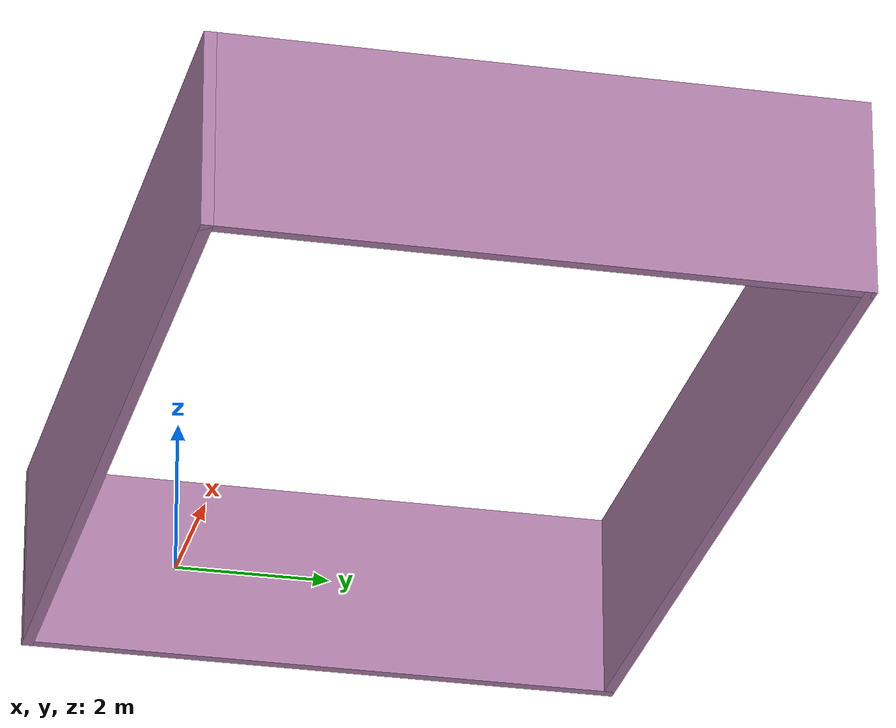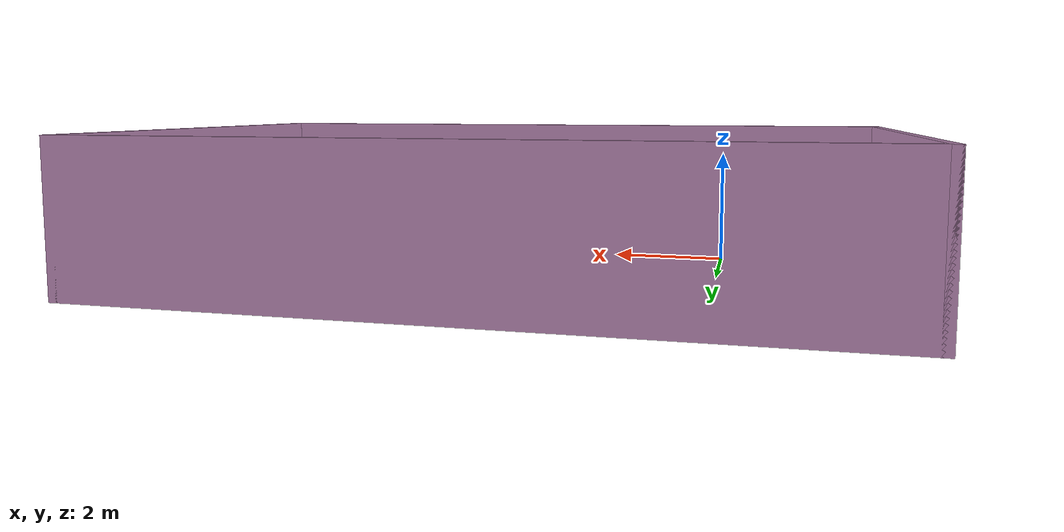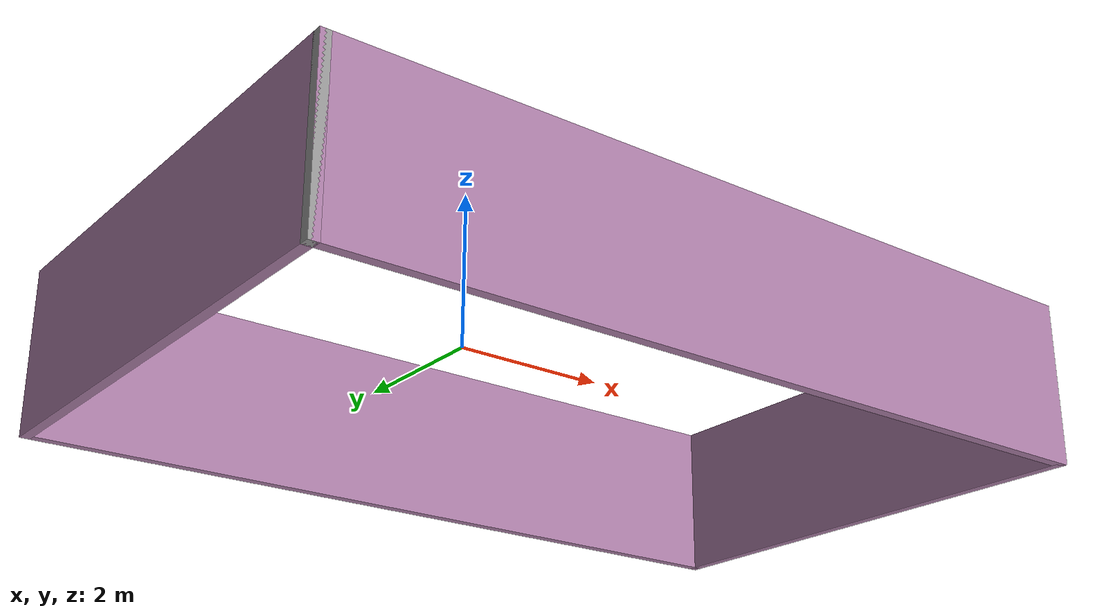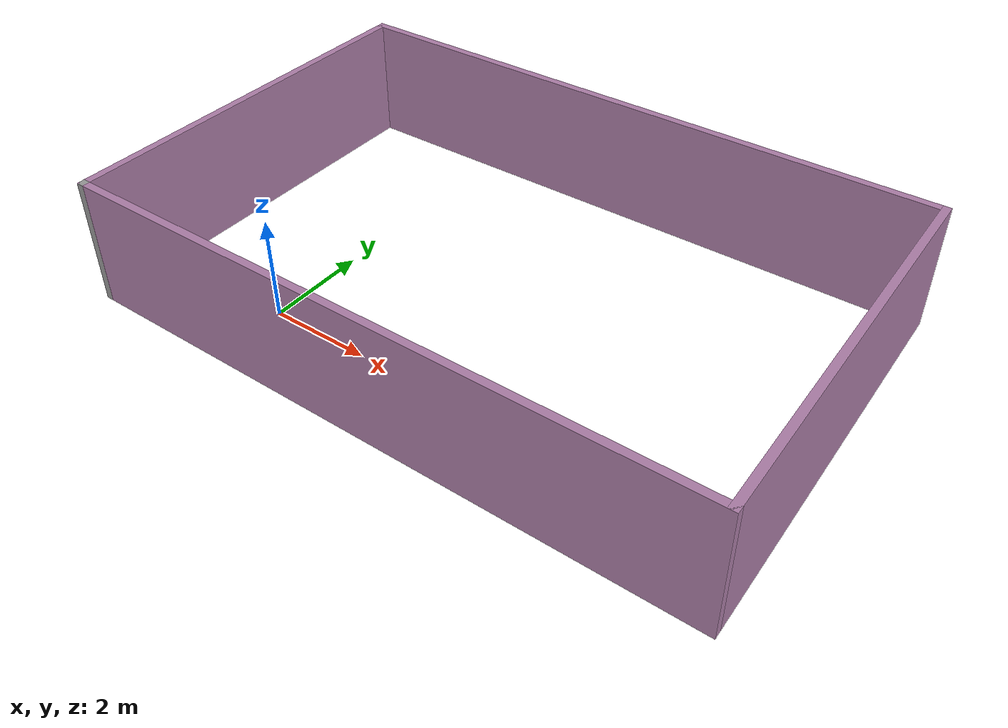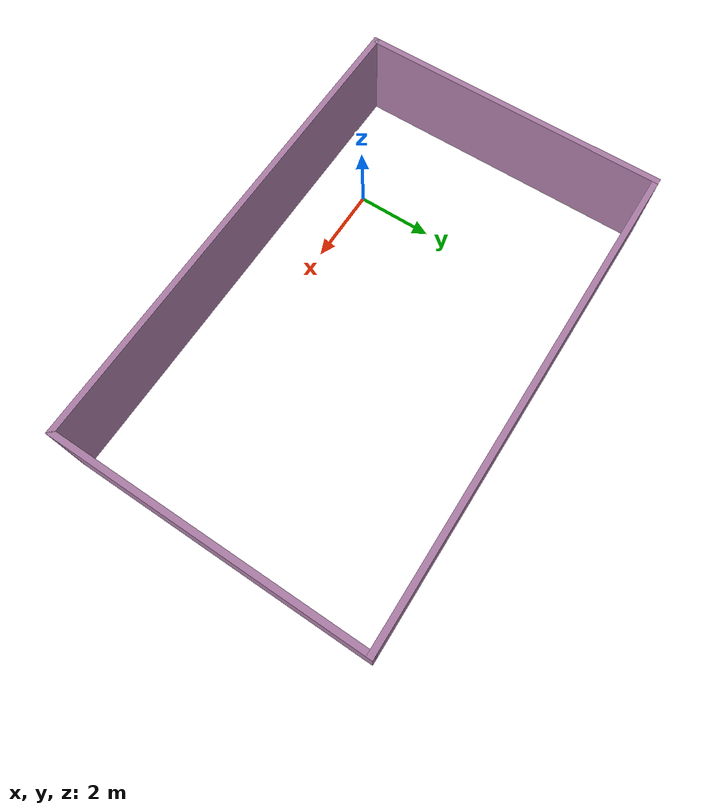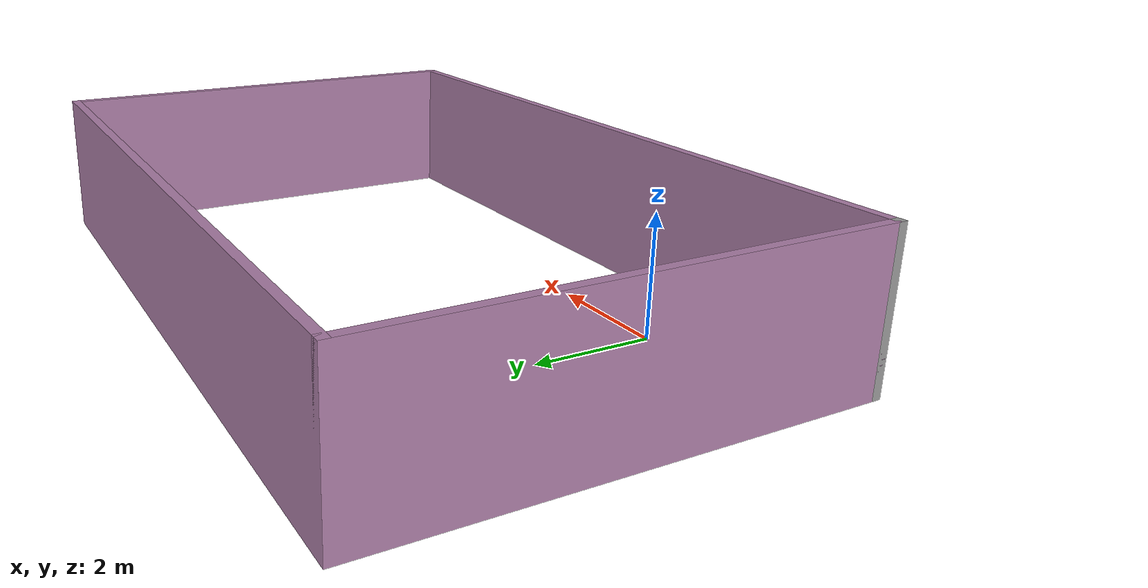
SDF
<?xml version='1.0'?>
<sdf version='1.6'>
  <model name='PurpleRoom'>
    <pose frame=''>3.321 2.492 0 0 -0 0</pose>
    <link name='Wall_0'>
      <collision name='Wall_0_Collision'>
        <geometry>
          <box>
            <size>8 0.15 2.5</size>
          </box>
        </geometry>
        <pose frame=''>0 0 1.25 0 -0 0</pose>
      </collision>
      <visual name='Wall_0_Visual'>
        <pose frame=''>0 0 1.25 0 -0 0</pose>
        <geometry>
          <box>
            <size>8 0.15 2.5</size>
          </box>
        </geometry>
        <material>
          <script>
            <uri>file://media/materials/scripts/gazebo.material</uri>
            <name>Gazebo/Grey</name>
          </script>
          <ambient>0.678431 0.498039 0.658824 1</ambient>
        </material>
        <meta>
          <layer>0</layer>
        </meta>
      </visual>
      <pose frame=''>-6.175 0 0 0 -0 1.5708</pose>
    </link>
    <link name='Wall_1'>
      <collision name='Wall_1_Collision'>
        <geometry>
          <box>
            <size>12.5 0.15 2.5</size>
          </box>
        </geometry>
        <pose frame=''>0 0 1.25 0 -0 0</pose>
      </collision>
      <visual name='Wall_1_Visual'>
        <pose frame=''>0 0 1.25 0 -0 0</pose>
        <geometry>
          <box>
            <size>12.5 0.15 2.5</size>
          </box>
        </geometry>
        <material>
          <script>
            <uri>file://media/materials/scripts/gazebo.material</uri>
            <name>Gazebo/Grey</name>
          </script>
          <ambient>0.678431 0.498039 0.658824 1</ambient>
        </material>
        <meta>
          <layer>0</layer>
        </meta>
      </visual>
      <pose frame=''>-0 3.925 0 0 -0 0</pose>
    </link>
    <link name='Wall_2'>
      <collision name='Wall_2_Collision'>
        <geometry>
          <box>
            <size>8 0.15 2.5</size>
          </box>
        </geometry>
        <pose frame=''>0 0 1.25 0 -0 0</pose>
      </collision>
      <visual name='Wall_2_Visual'>
        <pose frame=''>0 0 1.25 0 -0 0</pose>
        <geometry>
          <box>
            <size>8 0.15 2.5</size>
          </box>
        </geometry>
        <material>
          <script>
            <uri>file://media/materials/scripts/gazebo.material</uri>
            <name>Gazebo/Grey</name>
          </script>
          <ambient>0.678431 0.498039 0.658824 1</ambient>
        </material>
        <meta>
          <layer>0</layer>
        </meta>
      </visual>
      <pose frame=''>6.175 0 0 0 -0 -1.5708</pose>
    </link>
    <link name='Wall_3'>
      <collision name='Wall_3_Collision'>
        <geometry>
          <box>
            <size>12.5 0.15 2.5</size>
          </box>
        </geometry>
        <pose frame=''>0 0 1.25 0 -0 0</pose>
      </collision>
      <visual name='Wall_3_Visual'>
        <pose frame=''>0 0 1.25 0 -0 0</pose>
        <geometry>
          <box>
            <size>12.5 0.15 2.5</size>
          </box>
        </geometry>
        <material>
          <script>
            <uri>file://media/materials/scripts/gazebo.material</uri>
            <name>Gazebo/Grey</name>
          </script>
          <ambient>0.678431 0.498039 0.658824 1</ambient>
        </material>
        <meta>
          <layer>0</layer>
        </meta>
      </visual>
      <pose frame=''>-0 -3.925 0 0 -0 3.14159</pose>
    </link>
    <link name='Wall_4'>
      <collision name='Wall_4_Collision'>
        <geometry>
          <box>
            <size>0.15 0.15 2.5</size>
          </box>
        </geometry>
        <pose frame=''>0 0 1.25 0 -0 0</pose>
      </collision>
      <visual name='Wall_4_Visual'>
        <pose frame=''>0 0 1.25 0 -0 0</pose>
        <geometry>
          <box>
            <size>0.15 0.15 2.5</size>
          </box>
        </geometry>
        <material>
          <script>
            <uri>file://media/materials/scripts/gazebo.material</uri>
            <name>Gazebo/Grey</name>
          </script>
          <ambient>1 1 1 1</ambient>
        </material>
        <meta>
          <layer>0</layer>
        </meta>
      </visual>
      <pose frame=''>-6.175 -3.925 0 0 -0 0</pose>
    </link>
    <static>1</static>
  </model>
</sdf>
